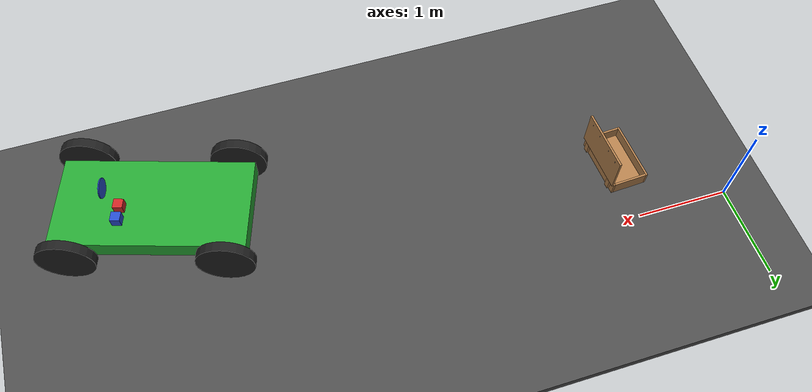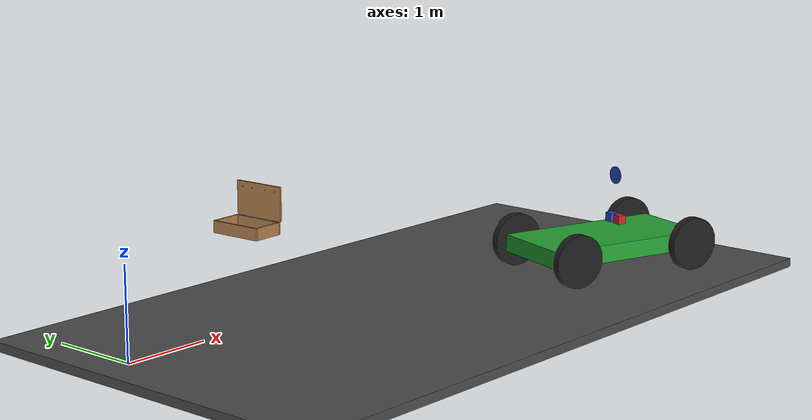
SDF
<sdf version="1.7">
 <world name="default">
  <model name="ground_plane">
   <static>1</static>
   <link name="link">
    <collision name="collision">
     <geometry><plane><normal>0 0 1</normal><size>100 100</size></plane></geometry>
     <surface>
      <contact><collide_bitmask>65535</collide_bitmask></contact>
      <friction><ode><mu>100</mu><mu2>50</mu2></ode></friction>
     </surface>
    </collision>
    <visual name="visual">
     <cast_shadows>0</cast_shadows>
     <geometry><plane><normal>0 0 1</normal><size>100 100</size></plane></geometry>
     <material>
      <script><uri>file://media/materials/scripts/gazebo.material</uri><name>Gazebo/Grey</name></script>
     </material>
    </visual>
   </link>
  </model>
  <model name="asphalt_plane">
   <static>1</static>
   <link name="link">
    <collision name="collision"><geometry><box><size>20 20 0.1</size></box></geometry></collision>
    <visual name="visual">
     <cast_shadows>0</cast_shadows>
     <geometry><box><size>20 20 0.1</size></box></geometry>
     <material>
      <script>
       <uri>model://asphalt_plane/materials/scripts</uri>
       <uri>model://asphalt_plane/materials/textures</uri>
       <name>vrc/asphalt</name>
      </script>
     </material>
    </visual>
   </link>
   <pose>0.038483 -0.02122 0 0 -0 0</pose>
  </model>
  <model name="car">
   <link name="chassis">
    <pose>0 0 0.3 0 -0 0</pose>
    <collision name="collision"><geometry><box><size>2 1 0.2</size></box></geometry></collision>
    <visual name="visual">
     <geometry><box><size>2 1 0.2</size></box></geometry>
     <material>
      <script><uri>file://media/materials/scripts/gazebo.material</uri><name>Gazebo/Green</name></script>
     </material>
    </visual>
    <inertial>
     <inertia><ixx>1</ixx><ixy>0</ixy><ixz>0</ixz><iyy>1</iyy><iyz>0</iyz><izz>1</izz></inertia>
     <mass>1</mass>
    </inertial>
   </link>
   <link name="front_left_wheel">
    <pose>0.8 0.6 0.3 -0 1.5707 1.5707</pose>
    <collision name="collision">
     <geometry><cylinder><radius>0.3</radius><length>0.1</length></cylinder></geometry>
    </collision>
    <visual name="visual">
     <geometry><cylinder><radius>0.3</radius><length>0.1</length></cylinder></geometry>
     <material>
      <script><uri>file://media/materials/scripts/gazebo.material</uri><name>Gazebo/Black</name></script>
     </material>
    </visual>
    <inertial>
     <inertia><ixx>1</ixx><ixy>0</ixy><ixz>0</ixz><iyy>1</iyy><iyz>0</iyz><izz>1</izz></inertia>
     <mass>1</mass>
    </inertial>
   </link>
   <link name="front_right_wheel">
    <pose>0.8 -0.6 0.3 -0 1.5707 1.5707</pose>
    <collision name="collision">
     <geometry><cylinder><radius>0.3</radius><length>0.1</length></cylinder></geometry>
    </collision>
    <visual name="visual">
     <geometry><cylinder><radius>0.3</radius><length>0.1</length></cylinder></geometry>
     <material>
      <script><uri>file://media/materials/scripts/gazebo.material</uri><name>Gazebo/Black</name></script>
     </material>
    </visual>
    <inertial>
     <inertia><ixx>1</ixx><ixy>0</ixy><ixz>0</ixz><iyy>1</iyy><iyz>0</iyz><izz>1</izz></inertia>
     <mass>1</mass>
    </inertial>
   </link>
   <link name="back_right_wheel">
    <pose>-0.8 -0.6 0.3 -0 1.5707 1.5707</pose>
    <collision name="collision">
     <geometry><cylinder><radius>0.3</radius><length>0.1</length></cylinder></geometry>
    </collision>
    <visual name="visual">
     <geometry><cylinder><radius>0.3</radius><length>0.1</length></cylinder></geometry>
     <material>
      <script><uri>file://media/materials/scripts/gazebo.material</uri><name>Gazebo/Black</name></script>
     </material>
    </visual>
    <inertial>
     <inertia><ixx>1</ixx><ixy>0</ixy><ixz>0</ixz><iyy>1</iyy><iyz>0</iyz><izz>1</izz></inertia>
     <mass>1</mass>
    </inertial>
   </link>
   <link name="back_left_wheel">
    <pose>-0.8 0.6 0.3 -0 1.5707 1.5707</pose>
    <collision name="collision">
     <geometry><cylinder><radius>0.3</radius><length>0.1</length></cylinder></geometry>
    </collision>
    <visual name="visual">
     <geometry><cylinder><radius>0.3</radius><length>0.1</length></cylinder></geometry>
     <material>
      <script><uri>file://media/materials/scripts/gazebo.material</uri><name>Gazebo/Black</name></script>
     </material>
    </visual>
    <inertial>
     <inertia><ixx>1</ixx><ixy>0</ixy><ixz>0</ixz><iyy>1</iyy><iyz>0</iyz><izz>1</izz></inertia>
     <mass>1</mass>
    </inertial>
   </link>
   <link name="gas_pedal">
    <pose>0.3 0.1 0.5 0 -0 0</pose>
    <collision name="collision"><geometry><box><size>0.1 0.1 0.1</size></box></geometry></collision>
    <visual name="visual">
     <geometry><box><size>0.1 0.1 0.1</size></box></geometry>
     <material>
      <script><uri>file://media/materials/scripts/gazebo.material</uri><name>Gazebo/Red</name></script>
     </material>
    </visual>
    <inertial>
     <inertia><ixx>1</ixx><ixy>0</ixy><ixz>0</ixz><iyy>1</iyy><iyz>0</iyz><izz>1</izz></inertia>
     <mass>1</mass>
    </inertial>
   </link>
   <link name="brake_pedal">
    <pose>0.3 0.25 0.5 0 -0 0</pose>
    <collision name="collision"><geometry><box><size>0.1 0.1 0.1</size></box></geometry></collision>
    <visual name="visual">
     <geometry><box><size>0.1 0.1 0.1</size></box></geometry>
     <material>
      <script><uri>file://media/materials/scripts/gazebo.material</uri><name>Gazebo/Blue</name></script>
     </material>
    </visual>
    <inertial>
     <inertia><ixx>1</ixx><ixy>0</ixy><ixz>0</ixz><iyy>1</iyy><iyz>0</iyz><izz>1</izz></inertia>
     <mass>1</mass>
    </inertial>
   </link>
   <link name="steering_wheel">
    <pose>0.3 0.2 1 0 1.5707 0</pose>
    <collision name="collision">
     <geometry><cylinder><radius>0.1</radius><length>0.01</length></cylinder></geometry>
    </collision>
    <visual name="visual">
     <geometry><cylinder><radius>0.1</radius><length>0.01</length></cylinder></geometry>
     <material>
      <script><uri>file://media/materials/scripts/gazebo.material</uri><name>Gazebo/Blue</name></script>
     </material>
    </visual>
    <inertial>
     <inertia><ixx>1</ixx><ixy>0</ixy><ixz>0</ixz><iyy>1</iyy><iyz>0</iyz><izz>1</izz></inertia>
     <mass>1</mass>
    </inertial>
   </link>
   <joint name="gas_joint" type="prismatic">
    <parent>chassis</parent>
    <child>gas_pedal</child>
    <axis>
     <xyz expressed_in="__model__">1 0 0</xyz>
     <limit><lower>0</lower><upper>0.2</upper></limit>
     <dynamics><spring_reference>0</spring_reference><spring_stiffness>0</spring_stiffness></dynamics>
    </axis>
   </joint>
   <joint name="brake_joint" type="prismatic">
    <parent>chassis</parent>
    <child>brake_pedal</child>
    <axis>
     <xyz expressed_in="__model__">1 0 0</xyz>
     <limit><lower>0</lower><upper>0.2</upper></limit>
     <dynamics><spring_reference>0</spring_reference><spring_stiffness>0</spring_stiffness></dynamics>
    </axis>
   </joint>
   <joint name="steering_joint" type="revolute">
    <parent>chassis</parent>
    <child>steering_wheel</child>
    <axis>
     <xyz expressed_in="__model__">1 0 0</xyz>
     <limit><lower>-7.853</lower><upper>7.853</upper></limit>
     <dynamics><spring_reference>0</spring_reference><spring_stiffness>0</spring_stiffness></dynamics>
    </axis>
   </joint>
   <joint name="front_left_joint" type="revolute2">
    <parent>chassis</parent>
    <child>front_left_wheel</child>
    <axis>
     <xyz expressed_in="__model__">0 0 1</xyz>
     <limit><lower>0.00022976</lower><upper>0.00022976</upper></limit>
     <dynamics><spring_reference>0</spring_reference><spring_stiffness>0</spring_stiffness></dynamics>
    </axis>
    <axis2>
     <xyz expressed_in="__model__">0 1 0</xyz>
     <limit><upper>1e+16</upper><lower>-1e+16</lower></limit>
     <dynamics><spring_reference>0</spring_reference><spring_stiffness>0</spring_stiffness></dynamics>
    </axis2>
    <physics><ode><limit><cfm>0</cfm><erp>0.9</erp></limit></ode></physics>
   </joint>
   <joint name="front_right_joint" type="revolute2">
    <parent>chassis</parent>
    <child>front_right_wheel</child>
    <axis>
     <xyz expressed_in="__model__">0 0 1</xyz>
     <limit><lower>0.00022976</lower><upper>0.00022976</upper></limit>
     <dynamics><spring_reference>0</spring_reference><spring_stiffness>0</spring_stiffness></dynamics>
    </axis>
    <axis2>
     <xyz expressed_in="__model__">0 1 0</xyz>
     <limit><upper>1e+16</upper><lower>-1e+16</lower></limit>
     <dynamics><spring_reference>0</spring_reference><spring_stiffness>0</spring_stiffness></dynamics>
    </axis2>
    <physics><ode><limit><cfm>0</cfm><erp>0.9</erp></limit></ode></physics>
   </joint>
   <joint name="back_right_joint" type="revolute2">
    <parent>chassis</parent>
    <child>back_right_wheel</child>
    <axis>
     <xyz expressed_in="__model__">0 0 1</xyz>
     <limit><lower>0</lower><upper>0</upper></limit>
     <dynamics><spring_reference>0</spring_reference><spring_stiffness>0</spring_stiffness></dynamics>
    </axis>
    <axis2>
     <xyz expressed_in="__model__">0 1 0</xyz>
     <limit><upper>1e+16</upper><lower>-1e+16</lower></limit>
     <dynamics><spring_reference>0</spring_reference><spring_stiffness>0</spring_stiffness></dynamics>
    </axis2>
    <physics><ode><limit><cfm>0</cfm><erp>0.9</erp></limit></ode></physics>
   </joint>
   <joint name="back_left_joint" type="revolute2">
    <parent>chassis</parent>
    <child>back_left_wheel</child>
    <axis>
     <xyz expressed_in="__model__">0 0 1</xyz>
     <limit><lower>0</lower><upper>0</upper></limit>
     <dynamics><spring_reference>0</spring_reference><spring_stiffness>0</spring_stiffness></dynamics>
    </axis>
    <axis2>
     <xyz expressed_in="__model__">0 1 0</xyz>
     <limit><upper>1e+16</upper><lower>-1e+16</lower></limit>
     <dynamics><spring_reference>0</spring_reference><spring_stiffness>0</spring_stiffness></dynamics>
    </axis2>
    <physics><ode><limit><cfm>0</cfm><erp>0.9</erp></limit></ode></physics>
   </joint>
   <plugin name="vehicle" filename="libVehiclePlugin.so">
    <front_left>front_left_joint</front_left>
    <front_right>front_right_joint</front_right>
    <back_left>back_left_joint</back_left>
    <back_right>back_right_joint</back_right>
    <gas>gas_joint</gas>
    <brake>brake_joint</brake>
    <steering>steering_joint</steering>
    <front_power>10</front_power>
    <rear_power>10</rear_power>
    <tire_angle_range>0.5</tire_angle_range>
    <max_speed>10</max_speed>
    <aero_load>0.1</aero_load>
   </plugin>
   <pose>5.8996 -1.43866 0.050004 -2e-06 2e-06 -0.313952</pose>
  </model>
  <model name="wooden_case">
   <link name="base">
    <pose>0 0 0.024 0 -0 0</pose>
    <inertial>
     <pose>-0.022184 0 0.171592 0 -0 0</pose>
     <mass>3.96264</mass>
     <inertia>
      <ixx>0.213536</ixx>
      <ixy>0</ixy>
      <ixz>0.000779377</ixz>
      <iyy>0.0708943</iyy>
      <iyz>0</iyz>
      <izz>0.154604</izz>
     </inertia>
    </inertial>
    <collision name="collision_back">
     <pose>-0.053975 0 0.1778 0 -0 0</pose>
     <geometry><box><size>0.01905 0.5461 0.3175</size></box></geometry>
     <surface>
      <contact>
       <poissons_ratio>0.347</poissons_ratio>
       <elastic_modulus>8.8e+09</elastic_modulus>
       <ode><kp>100000</kp><kd>100</kd><max_vel>100</max_vel><min_depth>0.001</min_depth></ode>
      </contact>
      <friction>
       <torsional>
        <coefficient>1</coefficient>
        <use_patch_radius>0</use_patch_radius>
        <surface_radius>0.01</surface_radius>
       </torsional>
      </friction>
     </surface>
    </collision>
    <visual name="visual_back">
     <pose>-0.053975 0 0.1778 0 -0 0</pose>
     <geometry><box><size>0.01905 0.5461 0.3175</size></box></geometry>
     <material>
      <script><uri>file://media/materials/scripts/gazebo.material</uri><name>Gazebo/Wood</name></script>
     </material>
    </visual>
    <collision name="collision_bottom">
     <pose>0 0 0.009525 0 -0 0</pose>
     <geometry><box><size>0.127 0.5842 0.01905</size></box></geometry>
     <surface>
      <contact>
       <poissons_ratio>0.347</poissons_ratio>
       <elastic_modulus>8.8e+09</elastic_modulus>
       <ode><kp>100000</kp><kd>100</kd><max_vel>100</max_vel><min_depth>0.001</min_depth></ode>
      </contact>
      <friction>
       <torsional>
        <coefficient>1</coefficient>
        <use_patch_radius>0</use_patch_radius>
        <surface_radius>0.01</surface_radius>
       </torsional>
      </friction>
     </surface>
    </collision>
    <visual name="visual_bottom">
     <pose>0 0 0.009525 0 -0 0</pose>
     <geometry><box><size>0.127 0.5842 0.01905</size></box></geometry>
     <material>
      <script><uri>file://media/materials/scripts/gazebo.material</uri><name>Gazebo/Wood</name></script>
     </material>
    </visual>
    <collision name="collision_top">
     <pose>0 0 0.346075 0 -0 0</pose>
     <geometry><box><size>0.127 0.5842 0.01905</size></box></geometry>
     <surface>
      <contact>
       <poissons_ratio>0.347</poissons_ratio>
       <elastic_modulus>8.8e+09</elastic_modulus>
       <ode><kp>100000</kp><kd>100</kd><max_vel>100</max_vel><min_depth>0.001</min_depth></ode>
      </contact>
      <friction>
       <torsional>
        <coefficient>1</coefficient>
        <use_patch_radius>0</use_patch_radius>
        <surface_radius>0.01</surface_radius>
       </torsional>
      </friction>
     </surface>
    </collision>
    <visual name="visual_top">
     <pose>0 0 0.346075 0 -0 0</pose>
     <geometry><box><size>0.127 0.5842 0.01905</size></box></geometry>
     <material>
      <script><uri>file://media/materials/scripts/gazebo.material</uri><name>Gazebo/Wood</name></script>
     </material>
    </visual>
    <collision name="collision_left">
     <pose>0 -0.282575 0.1778 0 -0 0</pose>
     <geometry><box><size>0.127 0.01905 0.3175</size></box></geometry>
     <surface>
      <contact>
       <poissons_ratio>0.347</poissons_ratio>
       <elastic_modulus>8.8e+09</elastic_modulus>
       <ode><kp>100000</kp><kd>100</kd><max_vel>100</max_vel><min_depth>0.001</min_depth></ode>
      </contact>
      <friction>
       <torsional>
        <coefficient>1</coefficient>
        <use_patch_radius>0</use_patch_radius>
        <surface_radius>0.01</surface_radius>
       </torsional>
      </friction>
     </surface>
    </collision>
    <visual name="visual_left">
     <pose>0 -0.282575 0.1778 0 -0 0</pose>
     <geometry><box><size>0.127 0.01905 0.3175</size></box></geometry>
     <material>
      <script><uri>file://media/materials/scripts/gazebo.material</uri><name>Gazebo/Wood</name></script>
     </material>
    </visual>
    <collision name="collision_right">
     <pose>0 0.282575 0.1778 0 -0 0</pose>
     <geometry><box><size>0.127 0.01905 0.3175</size></box></geometry>
     <surface>
      <contact>
       <poissons_ratio>0.347</poissons_ratio>
       <elastic_modulus>8.8e+09</elastic_modulus>
       <ode><kp>100000</kp><kd>100</kd><max_vel>100</max_vel><min_depth>0.001</min_depth></ode>
      </contact>
      <friction>
       <torsional>
        <coefficient>1</coefficient>
        <use_patch_radius>0</use_patch_radius>
        <surface_radius>0.01</surface_radius>
       </torsional>
      </friction>
     </surface>
    </collision>
    <visual name="visual_right">
     <pose>0 0.282575 0.1778 0 -0 0</pose>
     <geometry><box><size>0.127 0.01905 0.3175</size></box></geometry>
     <material>
      <script><uri>file://media/materials/scripts/gazebo.material</uri><name>Gazebo/Wood</name></script>
     </material>
    </visual>
    <collision name="collision_block_left">
     <pose>0.0095 -0.2151 -0.012 0 -0 0</pose>
     <geometry><box><size>0.108 0.05 0.024</size></box></geometry>
     <surface>
      <contact>
       <poissons_ratio>0.347</poissons_ratio>
       <elastic_modulus>8.8e+09</elastic_modulus>
       <ode><kp>100000</kp><kd>100</kd><max_vel>100</max_vel><min_depth>0.001</min_depth></ode>
      </contact>
      <friction>
       <torsional>
        <coefficient>1</coefficient>
        <use_patch_radius>0</use_patch_radius>
        <surface_radius>0.01</surface_radius>
       </torsional>
      </friction>
     </surface>
    </collision>
    <visual name="visual_block_left">
     <pose>0.0095 -0.2151 -0.012 0 -0 0</pose>
     <geometry><box><size>0.108 0.05 0.024</size></box></geometry>
     <material>
      <script><uri>file://media/materials/scripts/gazebo.material</uri><name>Gazebo/Wood</name></script>
     </material>
    </visual>
    <collision name="collision_block_right">
     <pose>0.0095 0.2151 -0.012 0 -0 0</pose>
     <geometry><box><size>0.108 0.05 0.024</size></box></geometry>
     <surface>
      <contact>
       <poissons_ratio>0.347</poissons_ratio>
       <elastic_modulus>8.8e+09</elastic_modulus>
       <ode><kp>100000</kp><kd>100</kd><max_vel>100</max_vel><min_depth>0.001</min_depth></ode>
      </contact>
      <friction>
       <torsional>
        <coefficient>1</coefficient>
        <use_patch_radius>0</use_patch_radius>
        <surface_radius>0.01</surface_radius>
       </torsional>
      </friction>
     </surface>
    </collision>
    <visual name="visual_block_right">
     <pose>0.0095 0.2151 -0.012 0 -0 0</pose>
     <geometry><box><size>0.108 0.05 0.024</size></box></geometry>
     <material>
      <script><uri>file://media/materials/scripts/gazebo.material</uri><name>Gazebo/Wood</name></script>
     </material>
    </visual>
   </link>
   <link name="lid">
    <pose>0.243775 0 0.009525 0 -0 0</pose>
    <inertial>
     <mass>1.97874</mass>
     <inertia>
      <ixx>0.0563367</ixx>
      <ixy>0</ixy>
      <ixz>0</ixz>
      <iyy>0.020911</iyy>
      <iyz>0</iyz>
      <izz>0.0771281</izz>
     </inertia>
    </inertial>
    <collision name="collision">
     <geometry><box><size>0.3556 0.5842 0.01905</size></box></geometry>
     <surface>
      <contact>
       <poissons_ratio>0.347</poissons_ratio>
       <elastic_modulus>8.8e+09</elastic_modulus>
       <ode><kp>100000</kp><kd>100</kd><max_vel>100</max_vel><min_depth>0.001</min_depth></ode>
      </contact>
      <friction>
       <torsional>
        <coefficient>1</coefficient>
        <use_patch_radius>0</use_patch_radius>
        <surface_radius>0.01</surface_radius>
       </torsional>
      </friction>
     </surface>
    </collision>
    <visual name="visual">
     <geometry><box><size>0.3556 0.5842 0.01905</size></box></geometry>
     <material>
      <script><uri>file://media/materials/scripts/gazebo.material</uri><name>Gazebo/Wood</name></script>
     </material>
    </visual>
    <visual name="tee_nut_1">
     <pose>0.122 -0.216 0 0 -0 0</pose>
     <geometry><cylinder><radius>0.00635</radius><length>0.0192405</length></cylinder></geometry>
     <material>
      <script><uri>file://media/materials/scripts/gazebo.material</uri><name>Gazebo/Grey</name></script>
     </material>
    </visual>
    <visual name="tee_nut_2">
     <pose>0.122 -0.088 0 0 -0 0</pose>
     <geometry><cylinder><radius>0.00635</radius><length>0.0192405</length></cylinder></geometry>
     <material>
      <script><uri>file://media/materials/scripts/gazebo.material</uri><name>Gazebo/Grey</name></script>
     </material>
    </visual>
    <visual name="tee_nut_3">
     <pose>0.122 0.088 0 0 -0 0</pose>
     <geometry><cylinder><radius>0.00635</radius><length>0.0192405</length></cylinder></geometry>
     <material>
      <script><uri>file://media/materials/scripts/gazebo.material</uri><name>Gazebo/Grey</name></script>
     </material>
    </visual>
    <visual name="tee_nut_4">
     <pose>0.122 0.216 0 0 -0 0</pose>
     <geometry><cylinder><radius>0.00635</radius><length>0.0192405</length></cylinder></geometry>
     <material>
      <script><uri>file://media/materials/scripts/gazebo.material</uri><name>Gazebo/Grey</name></script>
     </material>
    </visual>
   </link>
   <joint name="lid_hinge" type="revolute">
    <pose>-0.1778 0 0.01905 0 -0 0</pose>
    <parent>base</parent>
    <child>lid</child>
    <axis>
     <xyz>0 1 0</xyz>
     <limit><upper>0.523599</upper><lower>-1.5708</lower></limit>
     <dynamics><spring_reference>0</spring_reference><spring_stiffness>0</spring_stiffness></dynamics>
    </axis>
   </joint>
   <pose>1.68966 -0.139565 1.11349 2.54351 -1.57075 -2.49713</pose>
  </model>
 </world>
</sdf>
